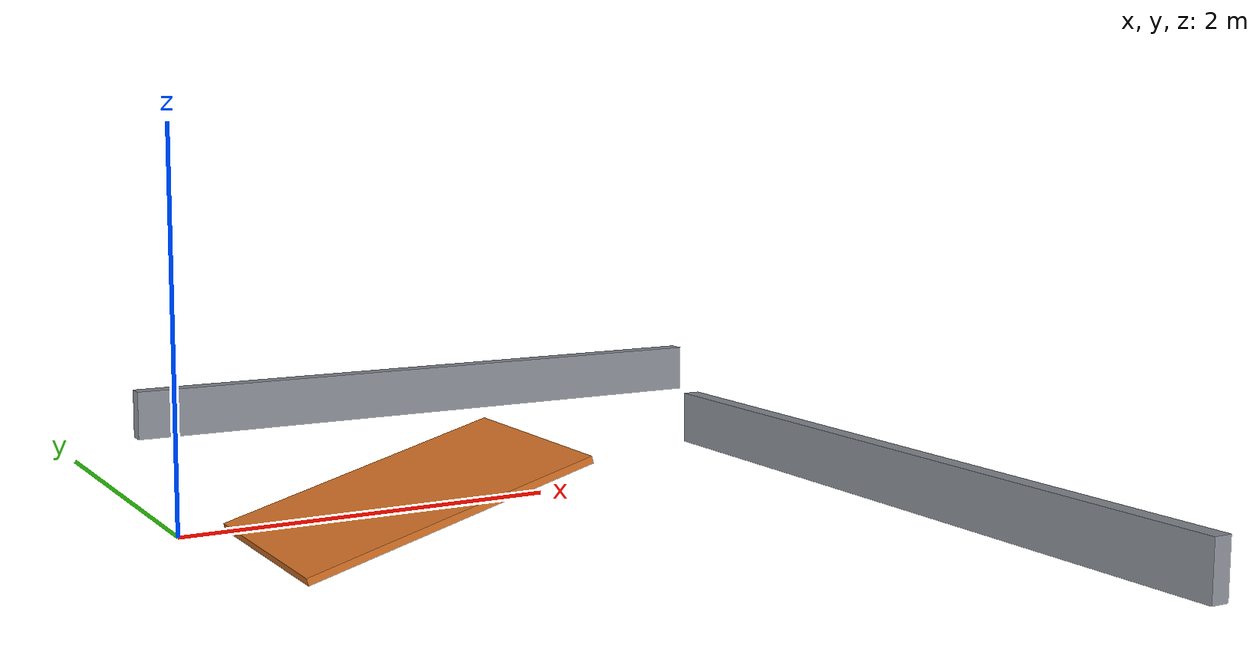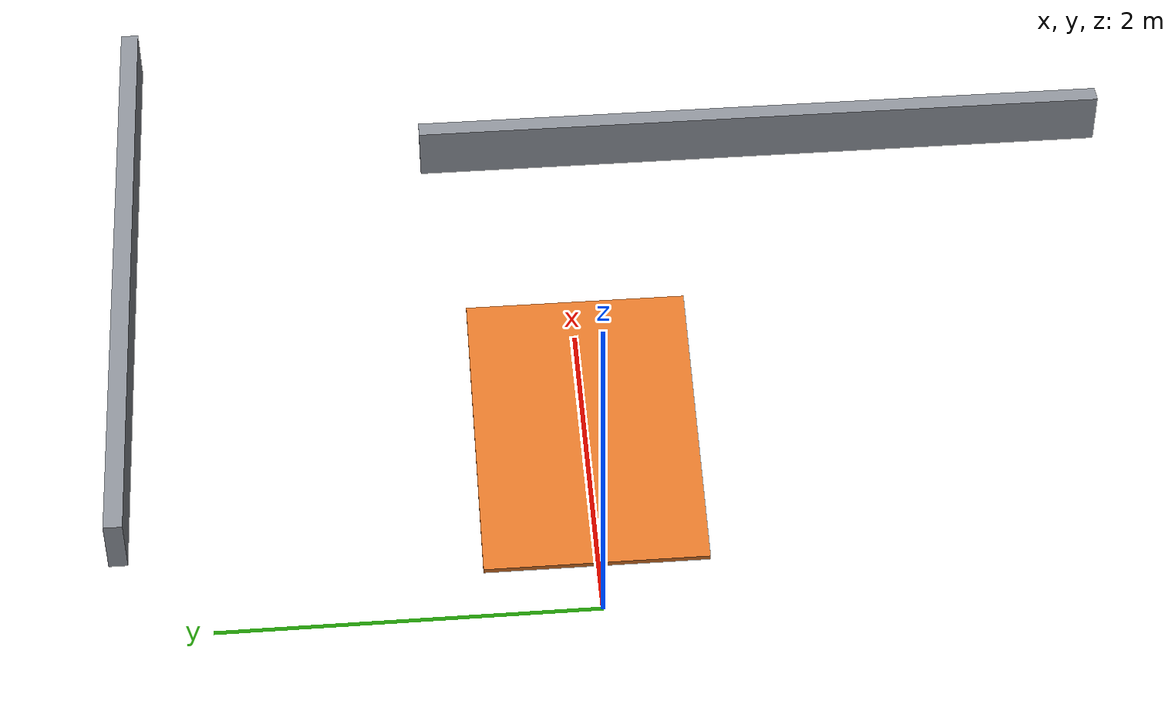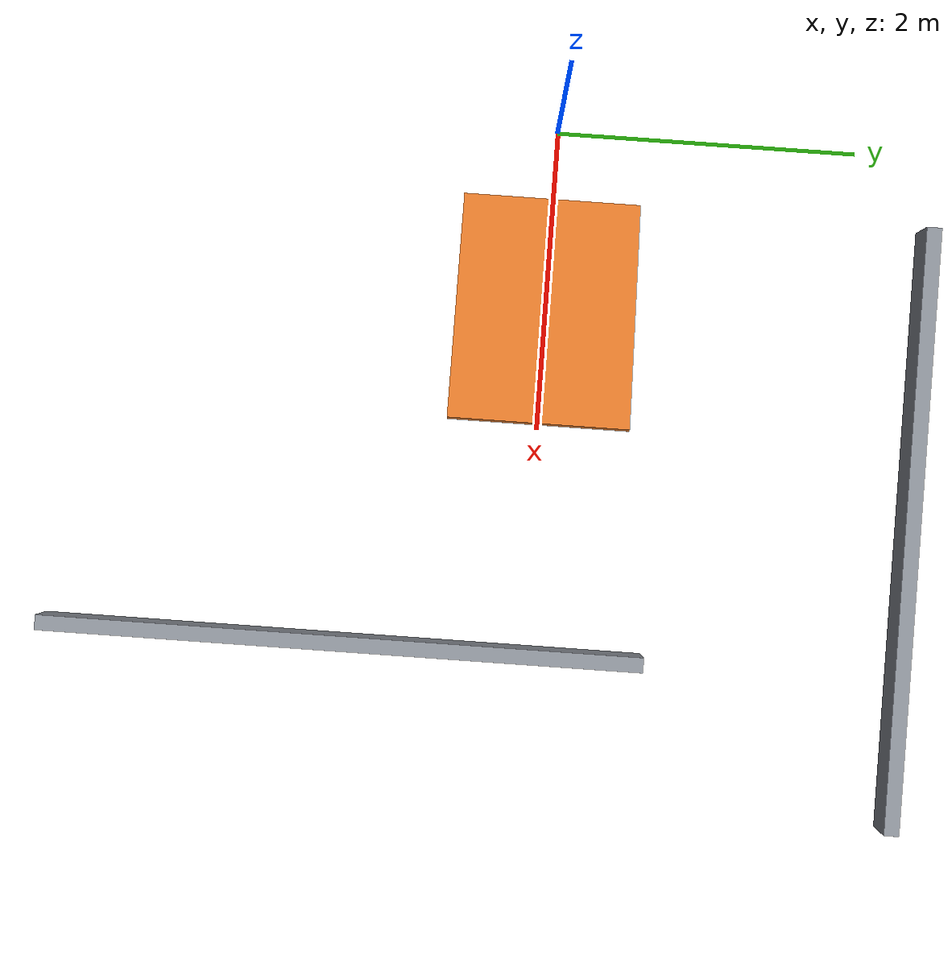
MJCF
<mujoco model="ramp_course">

    <asset>
        <material name="wall" rgba=".55 .57 .60 1"/>
        <material name="ramp" rgba=".85 .45 .15 1"/>
    </asset>

    <default>
        <!-- All scenery is static; condim 3 = plain sliding contact. -->
        <default class="scenery">
            <geom type="box" material="wall" condim="3" friction="1.0 0.1 0.1"/>
        </default>
    </default>

    <worldbody>
        <!-- ── ramp straight ahead of the start ──────────────────────────── -->
        <!-- pitch is NEGATIVE so the near edge is low and the far edge high:
             the car drives UP the slope (+.2 faces the tall edge at you). -->
        <geom name="ramp" type="box" material="ramp" condim="3"
              pos="1.2 0 .08" euler="0 -15.5 0" size=".8 .6 .02"/>

        <!-- ── turn 1: wall after the ramp on the right → sweep left (north) ─ -->
        <geom class="scenery" name="turn1" pos="3.5 -1.2 .15" size=".05 2.0 .15"/>

        <!-- ── turn 2: wall to the north → turn back right (east) ──────────── -->
        <geom class="scenery" name="turn2" pos="2.5 2.5 .15" size="2.0 .05 .15"/>
    </worldbody>
</mujoco>
